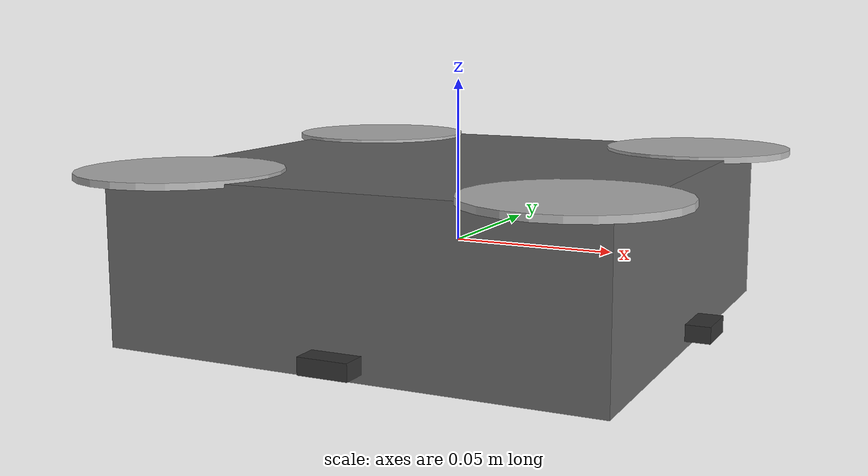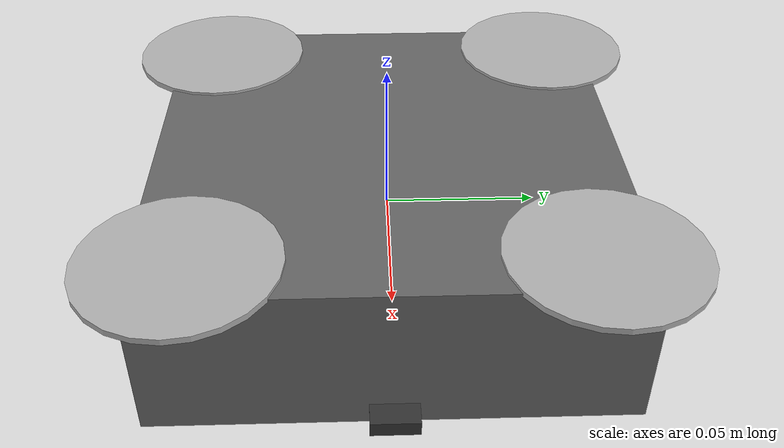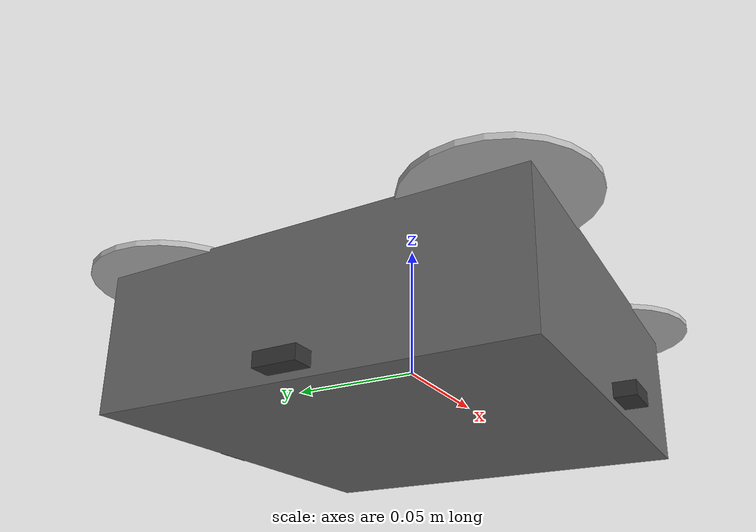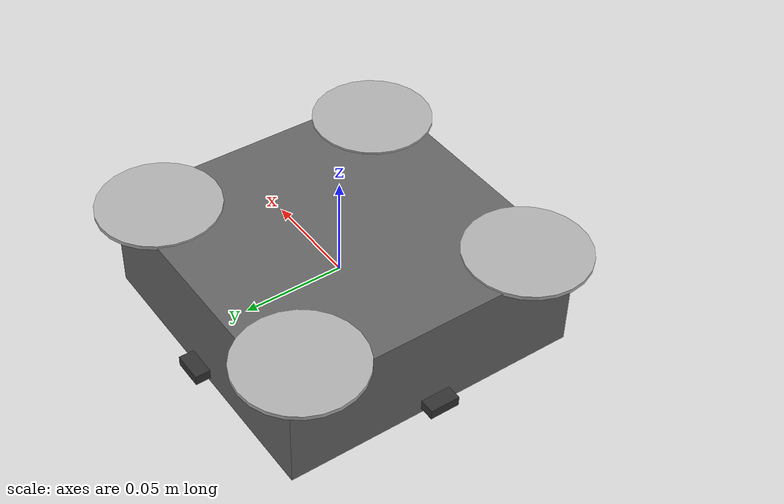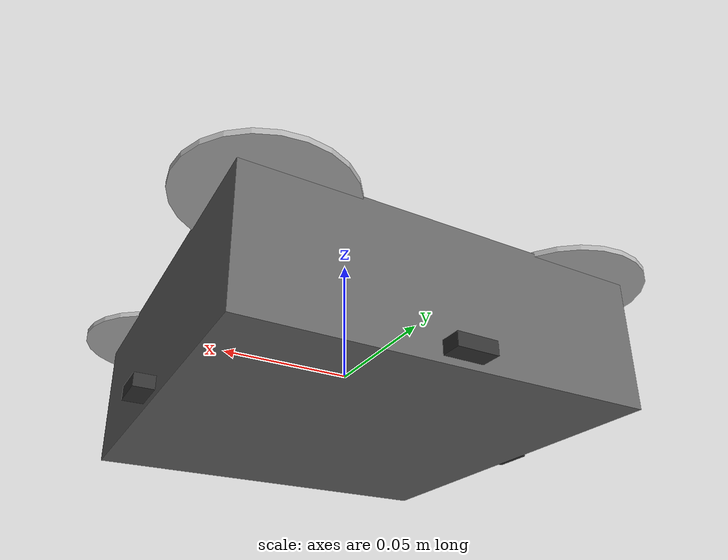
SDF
<?xml version="1.0" ?>
<sdf version="1.9">
  <model name="tof_slam_quadcopter">
    <static>false</static>

    <!-- Main body link -->
    <link name="base_link">
      <pose>0 0 0 0 0 0</pose>
      <inertial>
        <mass>0.3</mass>
        <inertia>
          <ixx>0.001</ixx>
          <iyy>0.001</iyy>
          <izz>0.002</izz>
          <ixy>0</ixy>
          <ixz>0</ixz>
          <iyz>0</iyz>
        </inertia>
      </inertial>

      <!-- Main body visual -->
      <visual name="body_visual">
        <geometry>
          <box>
            <size>0.15 0.15 0.05</size>
          </box>
        </geometry>
        <material>
          <ambient>0.2 0.2 0.2 1</ambient>
          <diffuse>0.4 0.4 0.4 1</diffuse>
          <specular>0.1 0.1 0.1 1</specular>
        </material>
      </visual>

      <!-- Simple collision box -->
      <collision name="body_collision">
        <geometry>
          <box>
            <size>0.15 0.15 0.05</size>
          </box>
        </geometry>
      </collision>

      <!-- Visual propellers (non-functional) -->
      <visual name="prop_fr">
        <pose>0.06 0.06 0.025 0 0 0</pose>
        <geometry>
          <cylinder>
            <radius>0.03</radius>
            <length>0.002</length>
          </cylinder>
        </geometry>
        <material>
          <ambient>0.3 0.3 0.3 1</ambient>
          <diffuse>0.7 0.7 0.7 1</diffuse>
        </material>
      </visual>

      <visual name="prop_fl">
        <pose>-0.06 0.06 0.025 0 0 0</pose>
        <geometry>
          <cylinder>
            <radius>0.03</radius>
            <length>0.002</length>
          </cylinder>
        </geometry>
        <material>
          <ambient>0.3 0.3 0.3 1</ambient>
          <diffuse>0.7 0.7 0.7 1</diffuse>
        </material>
      </visual>

      <visual name="prop_br">
        <pose>0.06 -0.06 0.025 0 0 0</pose>
        <geometry>
          <cylinder>
            <radius>0.03</radius>
            <length>0.002</length>
          </cylinder>
        </geometry>
        <material>
          <ambient>0.3 0.3 0.3 1</ambient>
          <diffuse>0.7 0.7 0.7 1</diffuse>
        </material>
      </visual>

      <visual name="prop_bl">
        <pose>-0.06 -0.06 0.025 0 0 0</pose>
        <geometry>
          <cylinder>
            <radius>0.03</radius>
            <length>0.002</length>
          </cylinder>
        </geometry>
        <material>
          <ambient>0.3 0.3 0.3 1</ambient>
          <diffuse>0.7 0.7 0.7 1</diffuse>
        </material>
      </visual>
    </link>

    <!-- Include 8 ToF sensors around the body -->
    <include>
      <uri>model://vl53l7cx</uri>
      <name>tof_front</name>
      <pose relative_to="base_link">0.075 0 -0.02 0 0 0</pose>
    </include>

    <include>
      <uri>model://vl53l7cx</uri>
      <name>tof_front_right</name>
      <pose relative_to="base_link">0.053 0.053 -0.02 0 0 0.785</pose>
    </include>

    <include>
      <uri>model://vl53l7cx</uri>
      <name>tof_right</name>
      <pose relative_to="base_link">0 0.075 -0.02 0 0 1.571</pose>
    </include>

    <include>
      <uri>model://vl53l7cx</uri>
      <name>tof_back_right</name>
      <pose relative_to="base_link">-0.053 0.053 -0.02 0 0 2.356</pose>
    </include>

    <include>
      <uri>model://vl53l7cx</uri>
      <name>tof_back</name>
      <pose relative_to="base_link">-0.075 0 -0.02 0 0 3.142</pose>
    </include>

    <include>
      <uri>model://vl53l7cx</uri>
      <name>tof_back_left</name>
      <pose relative_to="base_link">-0.053 -0.053 -0.02 0 0 -2.356</pose>
    </include>

    <include>
      <uri>model://vl53l7cx</uri>
      <name>tof_left</name>
      <pose relative_to="base_link">0 -0.075 -0.02 0 0 -1.571</pose>
    </include>

    <include>
      <uri>model://vl53l7cx</uri>
      <name>tof_front_left</name>
      <pose relative_to="base_link">0.053 -0.053 -0.02 0 0 -0.785</pose>
    </include>

    <!-- Joint each sensor to the base -->
    <joint name="tof_front_joint" type="fixed">
      <parent>base_link</parent>
      <child>tof_front::link</child>
    </joint>

    <joint name="tof_front_right_joint" type="fixed">
      <parent>base_link</parent>
      <child>tof_front_right::link</child>
    </joint>

    <joint name="tof_right_joint" type="fixed">
      <parent>base_link</parent>
      <child>tof_right::link</child>
    </joint>

    <joint name="tof_back_right_joint" type="fixed">
      <parent>base_link</parent>
      <child>tof_back_right::link</child>
    </joint>

    <joint name="tof_back_joint" type="fixed">
      <parent>base_link</parent>
      <child>tof_back::link</child>
    </joint>

    <joint name="tof_back_left_joint" type="fixed">
      <parent>base_link</parent>
      <child>tof_back_left::link</child>
    </joint>

    <joint name="tof_left_joint" type="fixed">
      <parent>base_link</parent>
      <child>tof_left::link</child>
    </joint>

    <joint name="tof_front_left_joint" type="fixed">
      <parent>base_link</parent>
      <child>tof_front_left::link</child>
    </joint>

    <!-- Add a simple diff drive plugin for testing (no flight dynamics yet) -->
    <plugin
      filename="gz-sim-diff-drive-system"
      name="gz::sim::systems::DiffDrive">
      <left_joint>left_wheel_joint</left_joint>
      <right_joint>right_wheel_joint</right_joint>
      <wheel_separation>0.15</wheel_separation>
      <wheel_radius>0.05</wheel_radius>
      <odom_publish_frequency>50</odom_publish_frequency>
      <topic>cmd_vel</topic>
    </plugin>
  </model>
</sdf>

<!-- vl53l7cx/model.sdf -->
<sdf version="1.9">
  <model name="vl53l7cx">
    <static>false</static>

    <link name="sensor">
      <pose>0 0 0 0 0 0</pose>
      <inertial>
        <mass>0.001</mass>
        <inertia>
          <ixx>0.000001</ixx>
          <iyy>0.000001</iyy>
          <izz>0.000001</izz>
          <ixy>0</ixy>
          <ixz>0</ixz>
          <iyz>0</iyz>
        </inertia>
      </inertial>

      <gravity>false</gravity>
      <visual name="body">
        <geometry>
          <box>
            <size>0.015 0.015 0.005</size>
          </box>
        </geometry>
        <material>
          <ambient>0.1 0.1 0.1 1</ambient>
          <diffuse>0.2 0.2 0.2 1</diffuse>
          <specular>0.1 0.1 0.1 1</specular>
        </material>
      </visual>

      <!-- ToF modeled as a shallow depth camera: 1×8 (single row) for lightweight 2D mapping -->
      <sensor name="depth_camera" type="depth">
        <always_on>1</always_on>
        <update_rate>20</update_rate>
        <camera>
          <!-- 60° HFOV. Height < width to approximate ~45° VFOV without the deprecated tag. -->
          <horizontal_fov>1.047</horizontal_fov>
          <image>
            <width>8</width>
            <height>1</height>
            <format>R_FLOAT32</format>
          </image>
          <clip>
            <near>0.02</near>
            <far>15</far>                        <!-- Match VL53L7CX max range -->
          </clip>
          <depth_camera>
            <output>depths</output>
          </depth_camera>
        </camera>

        <topic>depth_camera</topic>
      </sensor>
    </link>
  </model>
</sdf>
